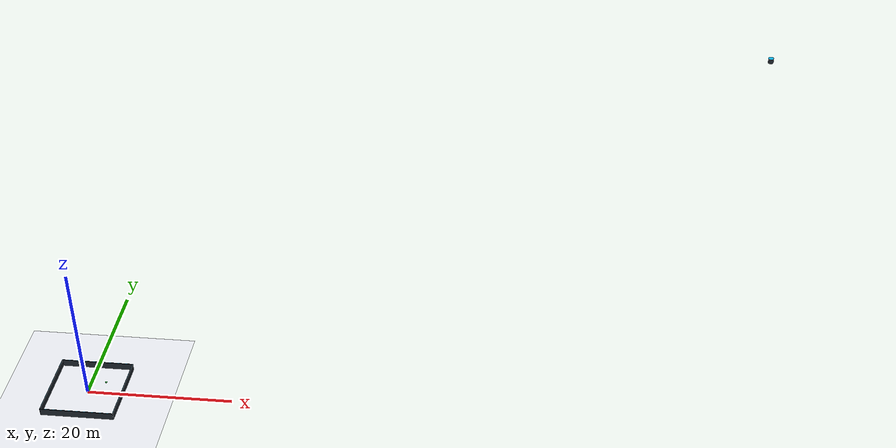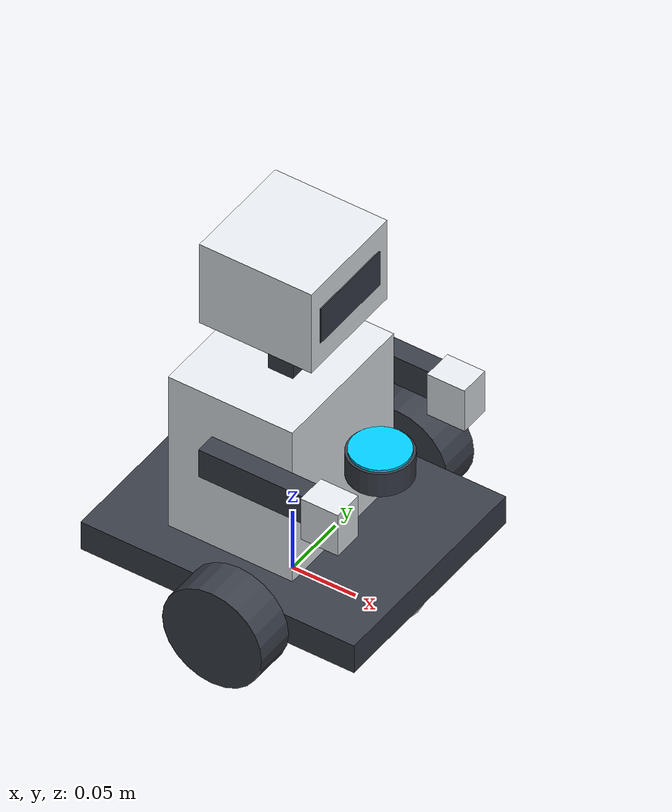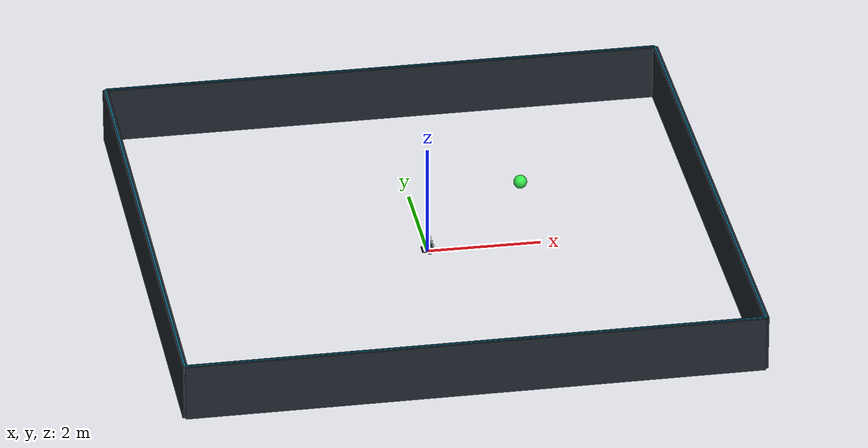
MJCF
<?xml version="1.0" encoding="utf-8"?>
<mujoco model="CARL Kinetic">
  <option timestep="0.01" gravity="0 0 -9.81" solver="Newton" integrator="implicit"/>
  <compiler angle="radian" coordinate="local" inertiafromgeom="true"/>

  <default>
    <geom contype="1" conaffinity="1" condim="3" friction="1.2 0.005 0.0001"/>
    <joint damping="0.15" frictionloss="0.003"/>
    <position ctrllimited="true" forcelimited="true" forcerange="-2.0 2.0"/>
    <velocity forcelimited="true" forcerange="-2.5 2.5"/>
  </default>

  <asset>
    <material name="matte_shell" rgba="0.90 0.92 0.94 1.0" roughness="0.4"/>
    <material name="inner_frame" rgba="0.22 0.24 0.28 1.0" roughness="0.5"/>
    <material name="laser_ring"  rgba="0.00 0.80 1.00 1.0" emission="1.2"/>
    <material name="wall_mat"      rgba="0.12 0.15 0.18 1.0" roughness="0.9"/>
    <material name="wall_glow"     rgba="0.05 0.70 0.90 1.0" emission="0.8"/>
    <material name="food_mat"      rgba="0.20 0.90 0.30 1.0" emission="0.5"/>
  </asset>

  <worldbody>
    <light name="studio_sun" pos="2 1 5" dir="-0.3 -0.2 -1" diffuse="0.85 0.85 0.85" castshadow="true"/>
    <geom name="floor" type="plane" size="12 12 0.1" rgba="0.93 0.94 0.96 1"/>

    <!-- ARENA WALLS -->
    <geom name="wall_s" type="box" size="5.0 0.05 0.50" pos="0  -5.0  0.50" material="wall_mat"/>
    <geom name="wall_n" type="box" size="5.0 0.05 0.50" pos="0   5.0  0.50" material="wall_mat"/>
    <geom name="wall_w" type="box" size="0.05 5.0 0.50" pos="-5.0  0  0.50" material="wall_mat"/>
    <geom name="wall_e" type="box" size="0.05 5.0 0.50" pos=" 5.0  0  0.50" material="wall_mat"/>

    <!-- Wall glow caps -->
    <geom name="wg_s" type="box" size="5.0 0.01 0.004" pos="0  -5.0  1.004" material="wall_glow" contype="0" conaffinity="0"/>
    <geom name="wg_n" type="box" size="5.0 0.01 0.004" pos="0   5.0  1.004" material="wall_glow" contype="0" conaffinity="0"/>
    <geom name="wg_w" type="box" size="0.01 5.0 0.004" pos="-5.0  0  1.004" material="wall_glow" contype="0" conaffinity="0"/>
    <geom name="wg_e" type="box" size="0.01 5.0 0.004" pos=" 5.0  0  1.004" material="wall_glow" contype="0" conaffinity="0"/>

    <!-- Centre obstacle -->
    <geom name="obstacle" type="cylinder" size="0.5 0.45" pos="99 99 0.45" material="wall_mat"/>
    <geom name="obstacle_glow" type="cylinder" size="0.52 0.004" pos="99 99 0.904" material="wall_glow" contype="0" conaffinity="0"/>

    <!-- Food pellet (respawned dynamically) -->
    <geom name="food" type="sphere" size="0.12" pos="2.0 2.0 0.12" material="food_mat" contype="0" conaffinity="0"/>

    <body name="drive_deck" pos="0 0 0.04">
      <freejoint name="spatial_identity"/>
      <!-- Restored to a stable 0.5kg value to match joint damping vectors -->
      <geom name="chassis" type="box" size="0.11 0.09 0.012" material="inner_frame" mass="0.5"/>

      <body name="lidar_scanner" pos="0.07 0 0.09">
        <geom type="cylinder" size="0.024 0.01" material="inner_frame" contype="0" conaffinity="0"/>
        <geom type="cylinder" size="0.022 0.006" pos="0 0 0.006" material="laser_ring" contype="0" conaffinity="0"/>
      </body>

      <body name="wheel_L" pos="0.02  0.11 0">
        <joint name="w_left" type="hinge" axis="0 1 0" damping="0.0" frictionloss="0.0"/>
        <geom type="cylinder" size="0.04 0.016" euler="1.5708 0 0" material="inner_frame" friction="1.4"/>
      </body>
      <body name="wheel_R" pos="0.02 -0.11 0">
        <joint name="w_right" type="hinge" axis="0 1 0" damping="0.0" frictionloss="0.0"/>
        <geom type="cylinder" size="0.04 0.016" euler="1.5708 0 0" material="inner_frame" friction="1.4"/>
      </body>
      <body name="w_caster" pos="-0.08 0 -0.015">
        <geom type="sphere" size="0.025" material="matte_shell" friction="0.002"/>
      </body>
      <body name="w_caster_front" pos="0.08 0 -0.015">
        <geom type="sphere" size="0.025" material="matte_shell" friction="0.002"/>
      </body>

      <body name="swaying_hip" pos="-0.01 0 0.015">
        <joint name="hip_pitch" type="hinge" axis="0 1 0" range="-0.55 0.55" stiffness="0.5" damping="0.05"/>
        <joint name="hip_roll"  type="hinge" axis="1 0 0" range="-0.38 0.38" stiffness="0.5" damping="0.05"/>

        <body name="torso" pos="0 0 0.06">
          <geom type="box" size="0.05 0.06 0.07" material="matte_shell" mass="0.05" contype="0" conaffinity="0"/>

          <body name="arm_L" pos="0 0.075 0.03">
            <joint name="shoulder_L" type="hinge" axis="0 1 0" range="-2.0 2.0"/>
            <geom type="box" size="0.05 0.008 0.012" pos="0.04 0 0" material="inner_frame"/>
            <geom type="box" size="0.015 0.012 0.018" pos="0.09 0 -0.004" material="matte_shell"/>
          </body>

          <body name="arm_R" pos="0 -0.075 0.03">
            <joint name="shoulder_R" type="hinge" axis="0 1 0" range="-2.0 2.0"/>
            <geom type="box" size="0.05 0.008 0.012" pos="0.04 0 0" material="inner_frame"/>
            <geom type="box" size="0.015 0.012 0.018" pos="0.09 0 -0.004" material="matte_shell"/>
          </body>

          <body name="neck_parallel_link" pos="0.01 0 0.07">
            <joint name="neck_sweep" type="hinge" axis="0 1 0" range="-0.6 0.7" stiffness="0.5" damping="0.1"/>
            <geom type="box" size="0.01 0.015 0.05" pos="0 0 0.04" material="inner_frame" mass="0.01"/>

            <body name="head" pos="0 0 0.08">
              <joint name="head_pan" type="hinge" axis="0 0 1" range="-1.4 1.4" damping="0.1"/>
              <geom type="box" size="0.045 0.045 0.035" material="matte_shell" mass="0.05"/>
              <geom type="box" size="0.01 0.035 0.015" pos="0.036 0 0" material="inner_frame"/>
            </body>

          </body>
        </body>
      </body>

    </body>
  </worldbody>

  <actuator>
    <velocity name="act_w_left"  joint="w_left"  kv="1.0" ctrllimited="true" ctrlrange="-20.0 20.0" forcelimited="true" forcerange="-0.5 0.5"/>
    <velocity name="act_w_right" joint="w_right" kv="1.0" ctrllimited="true" ctrlrange="-20.0 20.0" forcelimited="true" forcerange="-0.5 0.5"/>

    <position name="act_hip_pitch" joint="hip_pitch" kp="0.5" ctrlrange="-0.55 0.55"/>
    <position name="act_hip_roll"  joint="hip_roll"  kp="0.5" ctrlrange="-0.38 0.38"/>
    <position name="act_neck"      joint="neck_sweep" kp="0.1" ctrlrange="-0.6 0.7"/>
    <position name="act_head"      joint="head_pan"   kp="0.5"  ctrlrange="-1.4 1.4"/>
    <position name="act_arm_L"     joint="shoulder_L" kp="0.05"  ctrlrange="-2.0 2.0"/>
    <position name="act_arm_R"     joint="shoulder_R" kp="0.05"  ctrlrange="-2.0 2.0"/>
  </actuator>
</mujoco>
